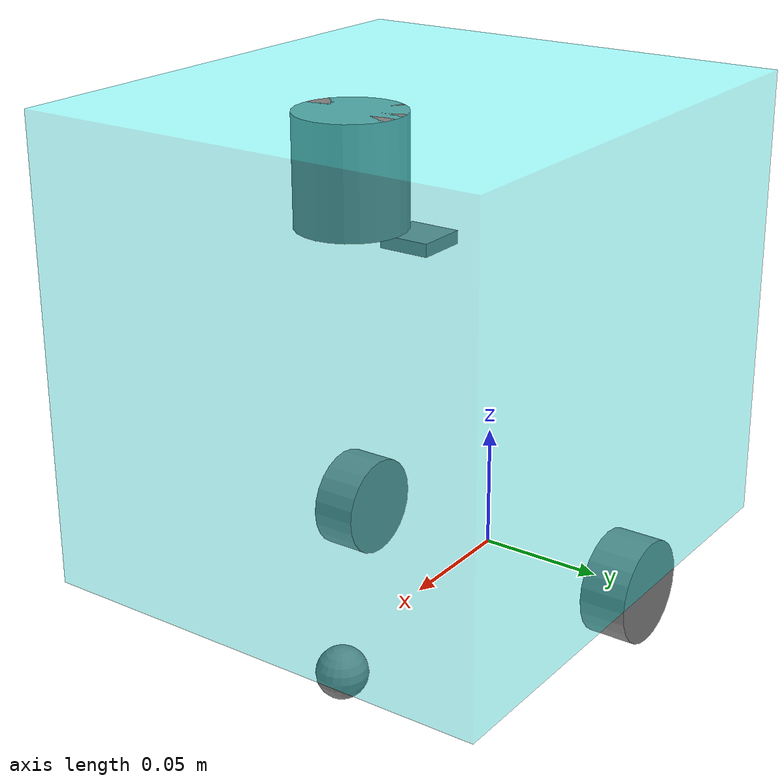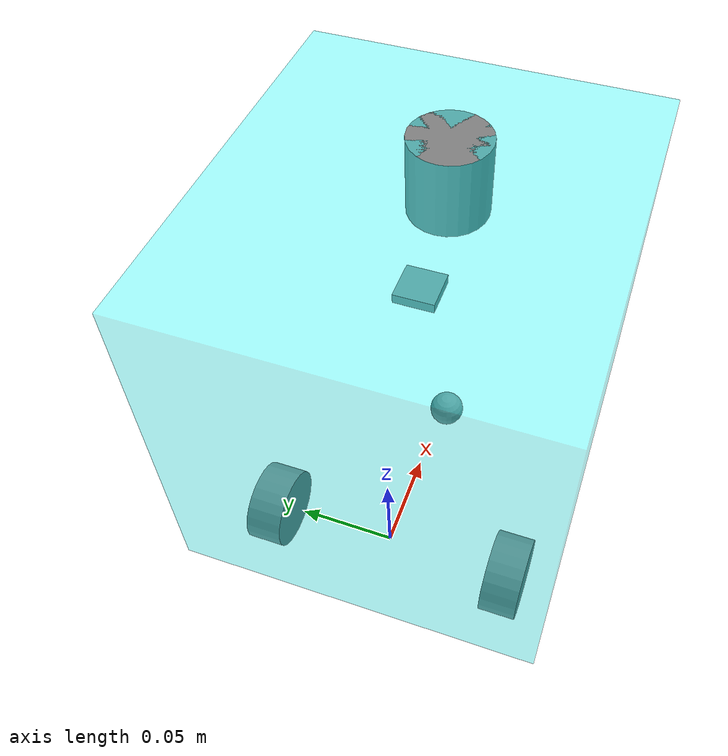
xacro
<?xml version="1.0"?>
<robot name="sample" xmlns:xacro="http://ros.org/wiki/xacro">
  <xacro:property name="base_length" value="0.20"/>
  <xacro:property name="base_width" value="0.18"/>
  <xacro:property name="base_height" value="0.22"/>
  <xacro:property name="wheel_radius" value="0.021"/>
  <xacro:property name="wheel_width" value="0.019"/>
  <xacro:property name="wheel_separation" value="0.13"/>
  <xacro:property name="axle_from_back" value="0.05"/>
  <xacro:property name="body_x" value="${base_length / 2 - axle_from_back}"/>
  <!-- DEVICE.mdの寸法はmに変換する。base_linkは左右車軸の中点、x前方・y左・z上。 -->

  <xacro:arg name="imu_height" default="0.165"/>
  <xacro:property name="caster_radius" value="0.01"/>
  <!-- IMU高さはDEVICE.mdの地面から16.5cm。キャスター径は表示用の仮値。 -->

  <material name="Cyan">
    <color rgba="0 1 1 0.35"/>
  </material>
  <material name="Gray">
    <color rgba="0.5 0.5 0.5 1"/>
  </material>

  <link name="base_link">
    <visual>
      <origin xyz="${body_x} 0 ${base_height / 2}"/>
      <geometry>
        <box size="${base_length} ${base_width} ${base_height - 2 * wheel_radius}"/>
      </geometry>
      <material name="Cyan"/>
    </visual>
    <collision>
      <origin xyz="${body_x} 0 ${base_height / 2}"/>
      <geometry>
        <box size="${base_length} ${base_width} ${base_height - 2 * wheel_radius}"/>
      </geometry>
    </collision>
  </link>
  <!-- 筐体は車輪の上から全高22cmまでの外形を表す箱で近似する。 -->

  <link name="base_footprint"/>
  <joint name="base_joint" type="fixed">
    <parent link="base_link"/>
    <child link="base_footprint"/>
    <origin xyz="0 0 ${-wheel_radius}"/>
  </joint>

  <xacro:macro name="wheel" params="prefix side">
    <link name="${prefix}_link">
      <visual>
        <origin rpy="${pi / 2} 0 0"/>
        <geometry>
          <cylinder radius="${wheel_radius}" length="${wheel_width}"/>
        </geometry>
        <material name="Gray"/>
      </visual>
      <collision>
        <origin rpy="${pi / 2} 0 0"/>
        <geometry>
          <cylinder radius="${wheel_radius}" length="${wheel_width}"/>
        </geometry>
      </collision>
    </link>
    <joint name="${prefix}_joint" type="continuous">
      <parent link="base_link"/>
      <child link="${prefix}_link"/>
      <origin xyz="0 ${side * wheel_separation / 2} 0"/>
      <axis xyz="0 1 0"/>
    </joint>
  </xacro:macro>
  <xacro:wheel prefix="drivewhl_l" side="1"/>
  <xacro:wheel prefix="drivewhl_r" side="-1"/>

  <link name="front_caster">
    <visual>
      <geometry>
        <sphere radius="${caster_radius}"/>
      </geometry>
      <material name="Gray"/>
    </visual>
  </link>
  <joint name="caster_joint" type="fixed">
    <parent link="base_link"/>
    <child link="front_caster"/>
    <origin xyz="${0.15 - axle_from_back} 0 ${caster_radius - wheel_radius}"/>
  </joint>

  <link name="imu_link">
    <visual>
      <geometry>
        <box size="0.02 0.02 0.005"/>
      </geometry>
      <material name="Gray"/>
    </visual>
  </link>
  <joint name="imu_joint" type="fixed">
    <parent link="base_link"/>
    <child link="imu_link"/>
    <origin xyz="${0.10 - axle_from_back} 0 ${float('$(arg imu_height)') - wheel_radius}"/>
  </joint>

  <link name="lidar_link">
    <visual>
      <geometry>
        <cylinder radius="0.02" length="0.04"/>
      </geometry>
      <material name="Gray"/>
    </visual>
  </link>
  <joint name="lidar_joint" type="fixed">
    <parent link="base_link"/>
    <child link="lidar_link"/>
    <origin xyz="${0.14 - axle_from_back} 0 ${0.20 - wheel_radius}"/>
  </joint>
  <!-- センサーの外観寸法は仮値。取り付け軸はbase_linkと同じ向きを仮定する。 -->
</robot>
<!-- Nav2 sam_bot_descriptionのURDFを実機寸法とTF表示向けに変更。出典・ライセンスはNOTICE.md。 -->
